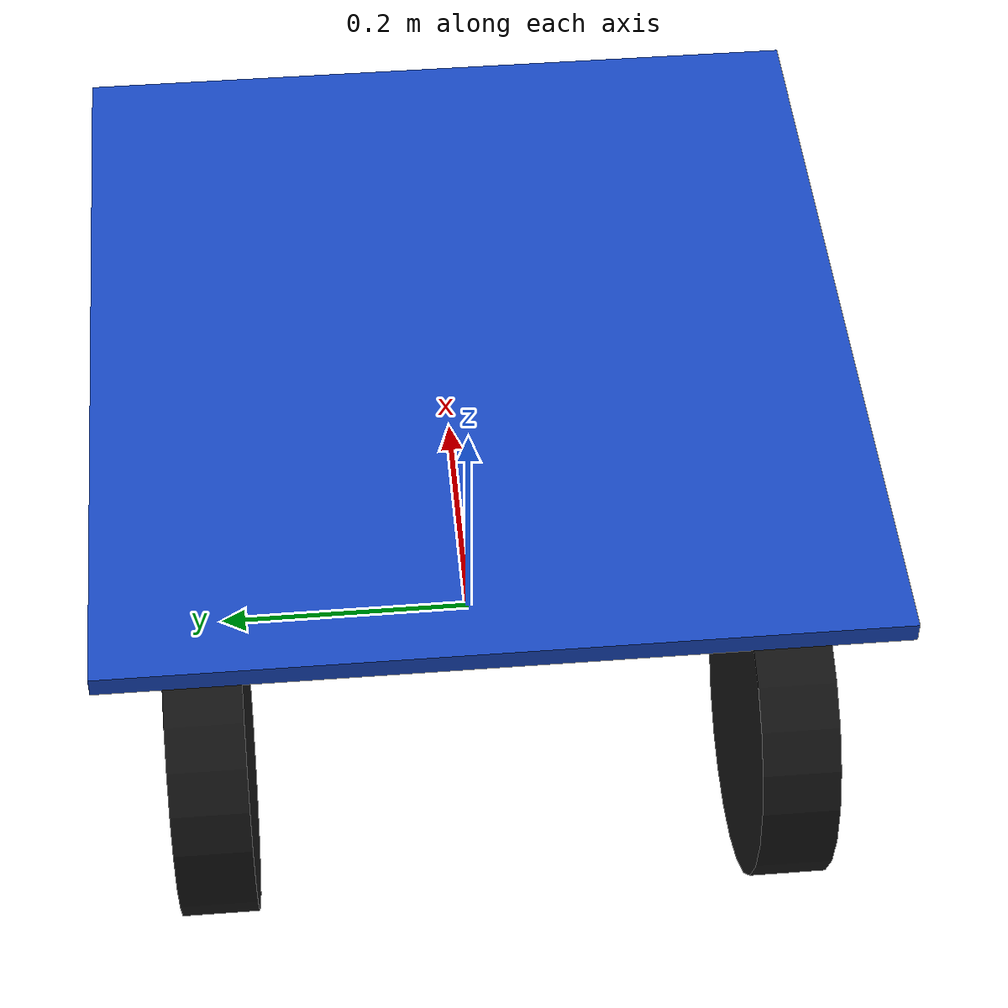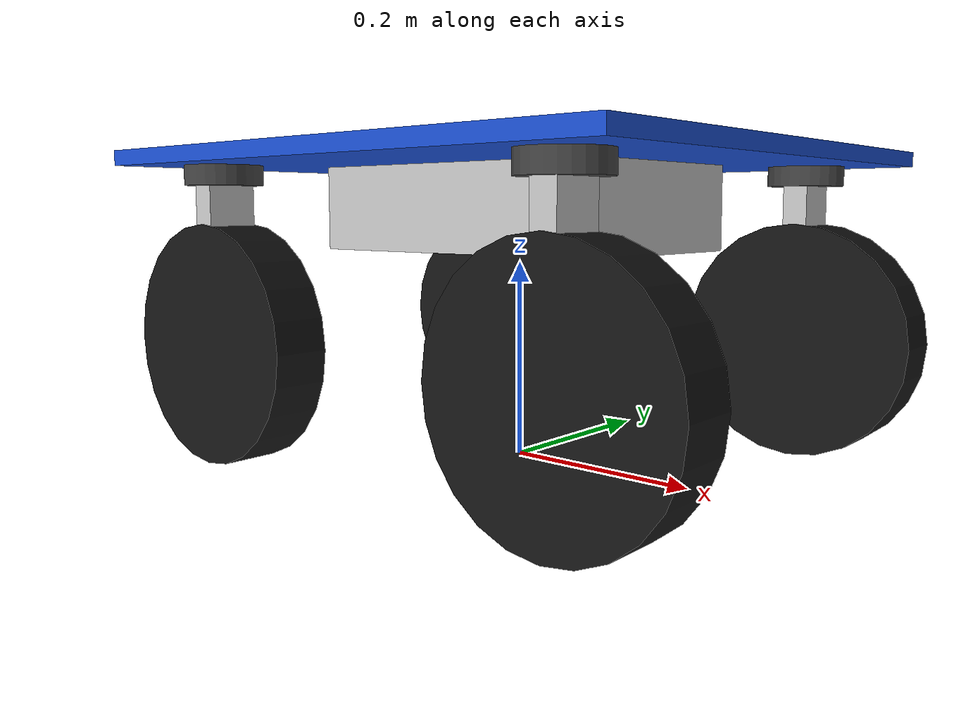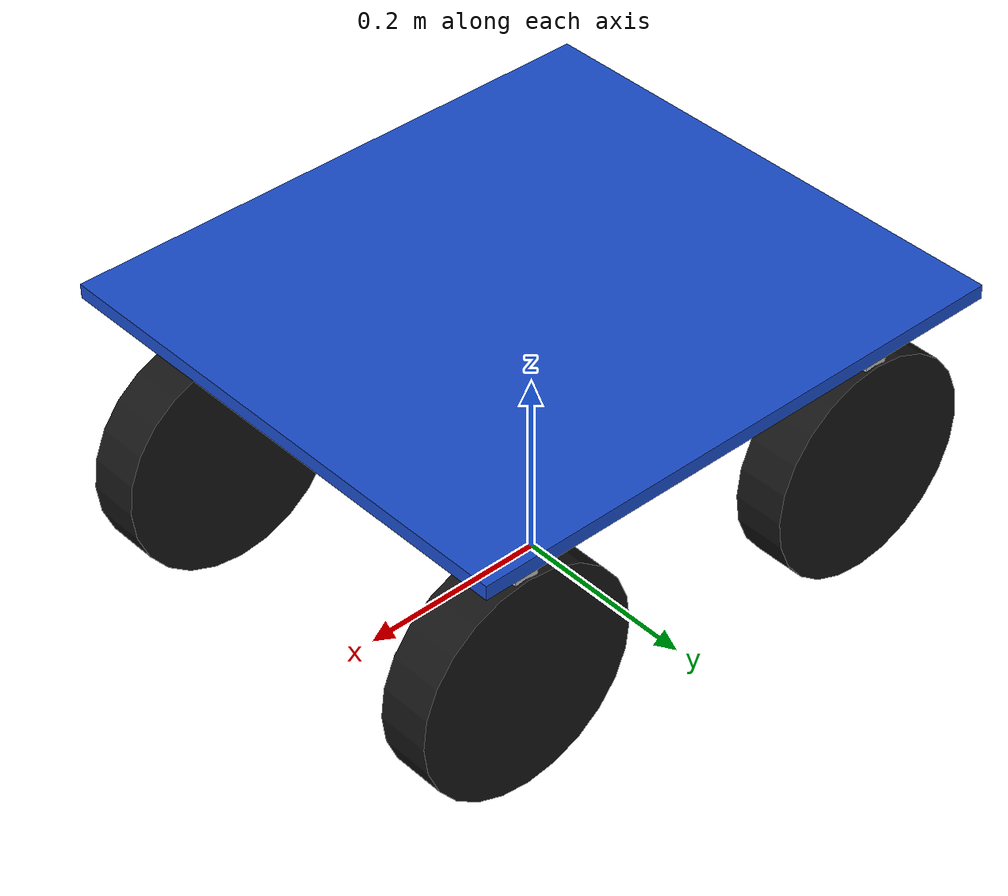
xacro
<?xml version="1.0"?>
<robot name="chassis" xmlns:xacro="http://www.ros.org/wiki/xacro">

  <xacro:include filename="$(find chassis_description)/urdf/materials.xacro" />
  <xacro:include filename="$(find chassis_description)/urdf/macros.xacro" />

  <!-- ================= 图纸参数（单位：m） ================= -->

  <!-- 顶板外形：600 x 550 -->
  <xacro:property name="deck_length" value="0.60" />
  <xacro:property name="deck_width" value="0.55" />

  <!-- 顶板厚度：先按 15 mm -->
  <xacro:property name="deck_thickness" value="0.015" />

  <!-- 总高：313.3 mm -->
  <xacro:property name="total_height" value="0.3133" />

  <!-- 底部腹板离地：213.3 mm -->
  <xacro:property name="belly_ground_clearance" value="0.2133" />

  <!-- 轮子：φ240 -->
  <xacro:property name="wheel_radius" value="0.12" />
  <xacro:property name="wheel_width" value="0.055" />

  <!-- 车身质量（先给一个仿真初值） -->
  <xacro:property name="base_mass" value="22.0" />

  <!--
    base_link 定义在顶板中心
    顶板上表面离地 total_height
    所以顶板中心离地 = total_height - deck_thickness/2
  -->
  <xacro:property name="base_z" value="${total_height - deck_thickness/2.0}" />

  <!--
    转向模块安装面取在顶板下表面
    从安装面到轮心的距离：
    = (顶板下表面离地高度) - wheel_radius
    = (total_height - deck_thickness) - wheel_radius
  -->
  <xacro:property name="wheel_center_drop" value="${(total_height - deck_thickness) - wheel_radius}" />

  <!-- 顶板下方腹板/箱体，做一个近似 -->
  <xacro:property name="belly_height"
    value="${(total_height - belly_ground_clearance) - deck_thickness}" />
  <xacro:property name="belly_length" value="0.34" />
  <xacro:property name="belly_width" value="0.22" />

  <!--
    四个轮组中心位置
    这里按图看是内缩安装，不贴到最外沿
    可后续再按 STEP 微调
  -->
  <xacro:property name="wheel_x" value="0.215" />
  <xacro:property name="wheel_y" value="0.205" />

  <!-- 转向模块外观尺寸 -->
  <xacro:property name="steer_hub_radius" value="0.038" />
  <xacro:property name="steer_hub_height" value="0.020" />
  <xacro:property name="arm_length" value="${wheel_center_drop - 0.02}" />
  <xacro:property name="arm_thickness" value="0.025" />

  <!-- 转向范围：0~180° -->
  <xacro:property name="steer_lower" value="-1.57079632679" />
  <xacro:property name="steer_upper" value="1.57079632679" />

  <!-- 关节参数 -->
  <xacro:property name="steer_effort" value="60.0" />
  <xacro:property name="steer_velocity" value="2.0" />
  <xacro:property name="wheel_effort" value="30.0" />
  <xacro:property name="wheel_velocity" value="30.0" />

  <!-- ================= base ================= -->

  <link name="base_link">

    <!-- 顶板 -->
    <visual>
      <origin xyz="0 0 0" rpy="0 0 0" />
      <geometry>
        <box size="${deck_length} ${deck_width} ${deck_thickness}" />
      </geometry>
      <material name="blue" />
    </visual>

    <!-- 中间腹板/箱体（近似） -->
    <visual>
      <origin xyz="0 0 -${deck_thickness/2.0 + belly_height/2.0}" rpy="0 0 0" />
      <geometry>
        <box size="${belly_length} ${belly_width} ${belly_height}" />
      </geometry>
      <material name="light_gray" />
    </visual>

    <!-- 简化碰撞 -->
    <collision>
      <origin xyz="0 0 -${deck_thickness/2.0 + belly_height/2.0}" rpy="0 0 0" />
      <geometry>
        <box size="${deck_length} ${deck_width} ${deck_thickness + belly_height}" />
      </geometry>
    </collision>

    <xacro:box_inertia
      mass="${base_mass}"
      x="${deck_length}"
      y="${deck_width}"
      z="${deck_thickness + belly_height}" />
  </link>

  <!-- 地面投影坐标系 -->
  <link name="base_footprint" />

  <joint name="base_footprint_joint" type="fixed">
    <parent link="base_footprint" />
    <child link="base_link" />
    <origin xyz="0 0 ${base_z}" rpy="0 0 0" />
  </joint>

  <!-- ================= 四个轮组 ================= -->
  <!-- 安装在顶板下表面，所以 z = -deck_thickness/2 -->

  <!-- front-left -->
  <xacro:swerve_wheel_module
    prefix="fl"
    parent="base_link"
    xyz="${ wheel_x} ${ wheel_y} ${-deck_thickness/2.0}"
    wheel_radius="${wheel_radius}"
    wheel_width="${wheel_width}"
    wheel_center_drop="${wheel_center_drop}"
    steer_hub_radius="${steer_hub_radius}"
    steer_hub_height="${steer_hub_height}"
    arm_length="${arm_length}"
    arm_thickness="${arm_thickness}"
    steer_limit_lower="${steer_lower}"
    steer_limit_upper="${steer_upper}"
    steer_effort="${steer_effort}"
    steer_velocity="${steer_velocity}"
    wheel_effort="${wheel_effort}"
    wheel_velocity="${wheel_velocity}" />

  <!-- front-right -->
  <xacro:swerve_wheel_module
    prefix="fr"
    parent="base_link"
    xyz="${ wheel_x} ${-wheel_y} ${-deck_thickness/2.0}"
    wheel_radius="${wheel_radius}"
    wheel_width="${wheel_width}"
    wheel_center_drop="${wheel_center_drop}"
    steer_hub_radius="${steer_hub_radius}"
    steer_hub_height="${steer_hub_height}"
    arm_length="${arm_length}"
    arm_thickness="${arm_thickness}"
    steer_limit_lower="${steer_lower}"
    steer_limit_upper="${steer_upper}"
    steer_effort="${steer_effort}"
    steer_velocity="${steer_velocity}"
    wheel_effort="${wheel_effort}"
    wheel_velocity="${wheel_velocity}" />

  <!-- rear-left -->
  <xacro:swerve_wheel_module
    prefix="rl"
    parent="base_link"
    xyz="${-wheel_x} ${ wheel_y} ${-deck_thickness/2.0}"
    wheel_radius="${wheel_radius}"
    wheel_width="${wheel_width}"
    wheel_center_drop="${wheel_center_drop}"
    steer_hub_radius="${steer_hub_radius}"
    steer_hub_height="${steer_hub_height}"
    arm_length="${arm_length}"
    arm_thickness="${arm_thickness}"
    steer_limit_lower="${steer_lower}"
    steer_limit_upper="${steer_upper}"
    steer_effort="${steer_effort}"
    steer_velocity="${steer_velocity}"
    wheel_effort="${wheel_effort}"
    wheel_velocity="${wheel_velocity}" />

  <!-- rear-right -->
  <xacro:swerve_wheel_module
    prefix="rr"
    parent="base_link"
    xyz="${-wheel_x} ${-wheel_y} ${-deck_thickness/2.0}"
    wheel_radius="${wheel_radius}"
    wheel_width="${wheel_width}"
    wheel_center_drop="${wheel_center_drop}"
    steer_hub_radius="${steer_hub_radius}"
    steer_hub_height="${steer_hub_height}"
    arm_length="${arm_length}"
    arm_thickness="${arm_thickness}"
    steer_limit_lower="${steer_lower}"
    steer_limit_upper="${steer_upper}"
    steer_effort="${steer_effort}"
    steer_velocity="${steer_velocity}"
    wheel_effort="${wheel_effort}"
    wheel_velocity="${wheel_velocity}" />

  <!-- ================= ros2_control ================= -->
  <ros2_control name="GazeboSystem" type="system">
    <hardware>
      <plugin>gz_ros2_control/GazeboSimSystem</plugin>
    </hardware>

    <joint name="fl_steer_joint">
      <command_interface name="position" />
      <state_interface name="position" />
      <state_interface name="velocity" />
    </joint>
    <joint name="fr_steer_joint">
      <command_interface name="position" />
      <state_interface name="position" />
      <state_interface name="velocity" />
    </joint>
    <joint name="rl_steer_joint">
      <command_interface name="position" />
      <state_interface name="position" />
      <state_interface name="velocity" />
    </joint>
    <joint name="rr_steer_joint">
      <command_interface name="position" />
      <state_interface name="position" />
      <state_interface name="velocity" />
    </joint>

    <joint name="fl_wheel_joint">
      <command_interface name="velocity" />
      <state_interface name="position" />
      <state_interface name="velocity" />
    </joint>
    <joint name="fr_wheel_joint">
      <command_interface name="velocity" />
      <state_interface name="position" />
      <state_interface name="velocity" />
    </joint>
    <joint name="rl_wheel_joint">
      <command_interface name="velocity" />
      <state_interface name="position" />
      <state_interface name="velocity" />
    </joint>
    <joint name="rr_wheel_joint">
      <command_interface name="velocity" />
      <state_interface name="position" />
      <state_interface name="velocity" />
    </joint>
  </ros2_control>

  <!-- ================= Gazebo plugin ================= -->
  <gazebo>
    <plugin filename="libgz_ros2_control-system.so"
      name="gz_ros2_control::GazeboSimROS2ControlPlugin">
      <parameters>$(find chassis_description)/config/ros2_controllers.yaml</parameters>

      <ros>
        <remapping>cmd_vel:=/cmd_vel</remapping>
        <remapping>odom:=/odom</remapping>
      </ros>
    </plugin>
  </gazebo>
</robot>

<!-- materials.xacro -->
<robot xmlns:xacro="http://www.ros.org/wiki/xacro">

  <material name="black">
    <color rgba="0.08 0.08 0.08 1.0"/>
  </material>

  <material name="dark_gray">
    <color rgba="0.25 0.25 0.25 1.0"/>
  </material>

  <material name="light_gray">
    <color rgba="0.75 0.75 0.75 1.0"/>
  </material>

  <material name="blue">
    <color rgba="0.10 0.30 0.80 1.0"/>
  </material>

</robot>

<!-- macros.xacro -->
<robot xmlns:xacro="http://www.ros.org/wiki/xacro">

  <!-- ================= 惯量宏 ================= -->

  <xacro:macro name="box_inertia" params="mass x y z">
    <inertial>
      <origin xyz="0 0 0" rpy="0 0 0"/>
      <mass value="${mass}"/>
      <inertia
        ixx="${mass * (y*y + z*z) / 12.0}"
        ixy="0.0"
        ixz="0.0"
        iyy="${mass * (x*x + z*z) / 12.0}"
        iyz="0.0"
        izz="${mass * (x*x + y*y) / 12.0}"/>
    </inertial>
  </xacro:macro>

  <xacro:macro name="cylinder_inertia" params="mass radius length">
    <inertial>
      <origin xyz="0 0 0" rpy="0 0 0"/>
      <mass value="${mass}"/>
      <inertia
        ixx="${mass * (3*radius*radius + length*length) / 12.0}"
        ixy="0.0"
        ixz="0.0"
        iyy="${mass * (3*radius*radius + length*length) / 12.0}"
        iyz="0.0"
        izz="${0.5 * mass * radius * radius}"/>
    </inertial>
  </xacro:macro>

  <!--
    更贴近你底盘图纸的轮组模块
    - 转向关节：绕 z 轴
    - 车轮自转关节：绕 y 轴
    - wheel_center_drop: 从转向安装面到轮心的垂直距离
  -->
  <xacro:macro name="swerve_wheel_module" params="
      prefix parent xyz
      wheel_radius wheel_width
      wheel_center_drop
      steer_hub_radius steer_hub_height
      arm_length arm_thickness
      steer_limit_lower steer_limit_upper
      steer_effort steer_velocity
      wheel_effort wheel_velocity">

    <!-- 转向模块总成 -->
    <link name="${prefix}_steer_link">

      <!-- 上部转盘/安装座 -->
      <visual>
        <origin xyz="0 0 -${steer_hub_height/2.0}" rpy="0 0 0"/>
        <geometry>
          <cylinder radius="${steer_hub_radius}" length="${steer_hub_height}"/>
        </geometry>
        <material name="dark_gray"/>
      </visual>

      <!-- 支撑臂（简化成一根斜臂） -->
      <visual>
        <origin xyz="0 0 -${wheel_center_drop/2.0}" rpy="0 0 0"/>
        <geometry>
          <box size="${arm_thickness} ${wheel_width*0.9} ${arm_length}"/>
        </geometry>
        <material name="light_gray"/>
      </visual>

      <!-- 轮轴连接块 -->
      <visual>
        <origin xyz="0 0 -${wheel_center_drop}" rpy="0 0 0"/>
        <geometry>
          <box size="0.05 ${wheel_width*0.9} 0.04"/>
        </geometry>
        <material name="dark_gray"/>
      </visual>

      <!-- 碰撞体先简化 -->
      <collision>
        <origin xyz="0 0 -${wheel_center_drop/2.0}" rpy="0 0 0"/>
        <geometry>
          <box size="0.08 ${wheel_width} ${wheel_center_drop}"/>
        </geometry>
      </collision>

      <xacro:box_inertia mass="2.5" x="0.08" y="${wheel_width}" z="${wheel_center_drop}"/>
    </link>

    <!-- 转向关节 -->
    <joint name="${prefix}_steer_joint" type="revolute">
      <parent link="${parent}"/>
      <child link="${prefix}_steer_link"/>
      <origin xyz="${xyz}" rpy="0 0 0"/>
      <axis xyz="0 0 1"/>
      <limit
        lower="${steer_limit_lower}"
        upper="${steer_limit_upper}"
        effort="${steer_effort}"
        velocity="${steer_velocity}"/>
      <dynamics damping="0.4" friction="0.05"/>
    </joint>

    <!-- 车轮 -->
    <link name="${prefix}_wheel_link">
      <visual>
        <origin xyz="0 0 0" rpy="1.57079632679 0 0"/>
        <geometry>
          <cylinder radius="${wheel_radius}" length="${wheel_width}"/>
        </geometry>
        <material name="black"/>
      </visual>

      <collision>
        <origin xyz="0 0 0" rpy="1.57079632679 0 0"/>
        <geometry>
          <cylinder radius="${wheel_radius}" length="${wheel_width}"/>
        </geometry>
      </collision>

      <xacro:cylinder_inertia mass="3.0" radius="${wheel_radius}" length="${wheel_width}"/>
    </link>

    <!-- 车轮自转关节 -->
    <joint name="${prefix}_wheel_joint" type="continuous">
      <parent link="${prefix}_steer_link"/>
      <child link="${prefix}_wheel_link"/>
      <origin xyz="0 0 -${wheel_center_drop}" rpy="0 0 0"/>
      <axis xyz="0 1 0"/>
      <limit effort="${wheel_effort}" velocity="${wheel_velocity}"/>
      <dynamics damping="0.1" friction="0.02"/>
    </joint>

  </xacro:macro>

</robot>
